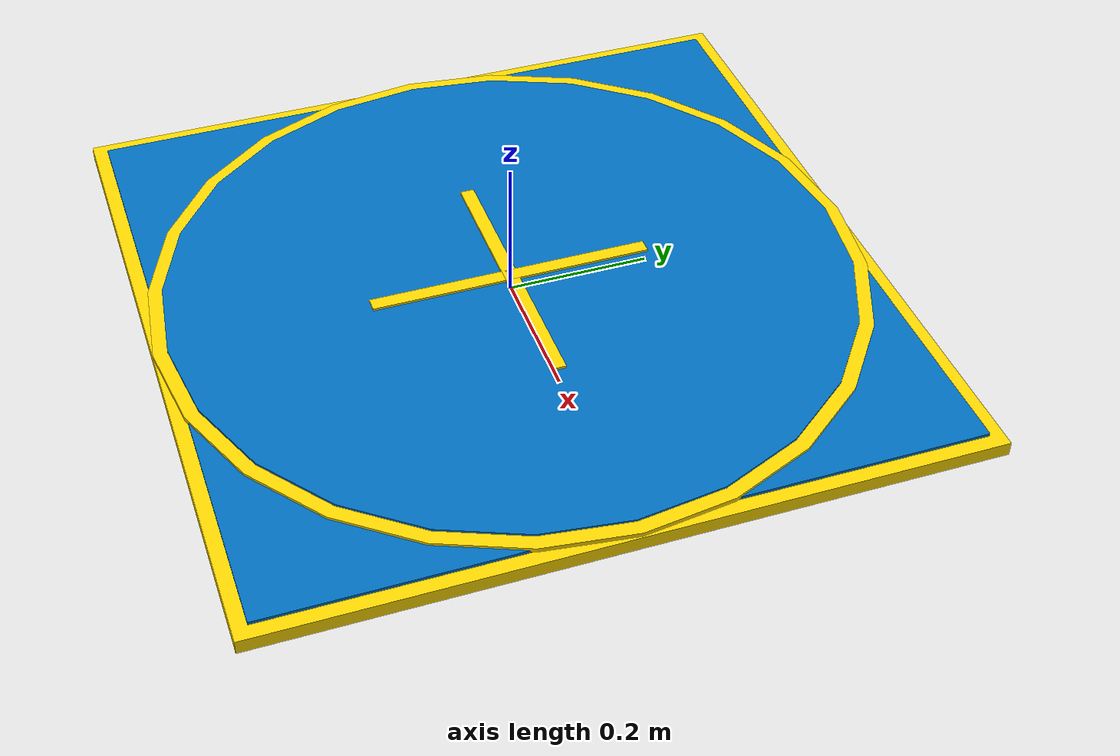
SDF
<?xml version='1.0'?>
<sdf version='1.10'>
  <model name="package_base">
    <static>true</static>
    <link name="link">
      <visual name="yellow_base">
        <geometry>
          <box>
            <size>1.0 1.0 0.02</size>
          </box>
        </geometry>
        <material>
          <ambient>1.0 0.85 0.0 1</ambient>
          <diffuse>1.0 0.85 0.0 1</diffuse>
          <specular>0.1 0.1 0.1 1</specular>
        </material>
      </visual>

      <visual name="blue_border">
        <pose>0 0 0.012 0 0 0</pose>
        <geometry>
          <box>
            <size>0.96 0.96 0.005</size>
          </box>
        </geometry>
        <material>
          <ambient>0.0 0.439 0.753 1</ambient>
          <diffuse>0.0 0.439 0.753 1</diffuse>
          <specular>0.1 0.1 0.1 1</specular>
        </material>
      </visual>

      <visual name="yellow_circle">
        <pose>0 0 0.015 0 0 0</pose>
        <geometry>
          <cylinder>
            <radius>0.5</radius>
            <length>0.006</length>
          </cylinder>
        </geometry>
        <material>
          <ambient>1.0 0.85 0.0 1</ambient>
          <diffuse>1.0 0.85 0.0 1</diffuse>
          <specular>0.1 0.1 0.1 1</specular>
        </material>
      </visual>

      <visual name="blue_circle">
        <pose>0 0 0.018 0 0 0</pose>
        <geometry>
          <cylinder>
            <radius>0.48</radius>
            <length>0.006</length>
          </cylinder>
        </geometry>
        <material>
          <ambient>0.0 0.439 0.753 1</ambient>
          <diffuse>0.0 0.439 0.753 1</diffuse>
          <specular>0.1 0.1 0.1 1</specular>
        </material>
      </visual>

      <visual name="cross_horizontal">
        <pose>0 0 0.022 0 0 0</pose>
        <geometry>
          <box>
            <size>0.4 0.02 0.005</size>
          </box>
        </geometry>
        <material>
          <ambient>1.0 0.85 0.0 1</ambient>
          <diffuse>1.0 0.85 0.0 1</diffuse>
          <specular>0.1 0.1 0.1 1</specular>
        </material>
      </visual>

      <visual name="cross_vertical">
        <pose>0 0 0.022 0 0 0</pose>
        <geometry>
          <box>
            <size>0.02 0.4 0.005</size>
          </box>
        </geometry>
        <material>
          <ambient>1.0 0.85 0.0 1</ambient>
          <diffuse>1.0 0.85 0.0 1</diffuse>
          <specular>0.1 0.1 0.1 1</specular>
        </material>
      </visual>

      <collision name="collision">
        <geometry>
          <box>
            <size>1.0 1.0 0.02</size>
          </box>
        </geometry>
      </collision>
    </link>
  </model>
</sdf>
